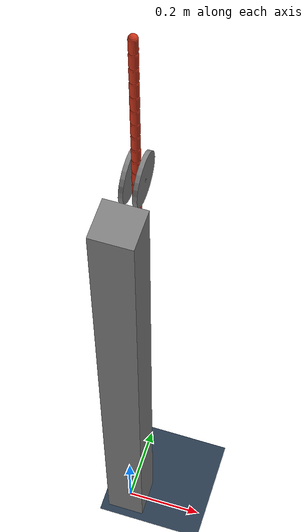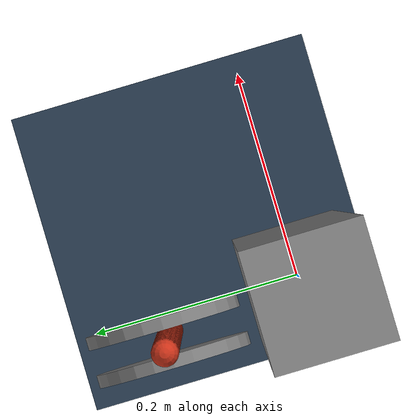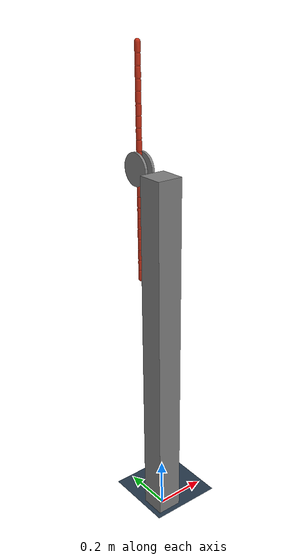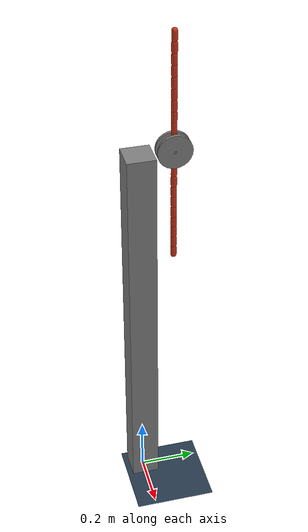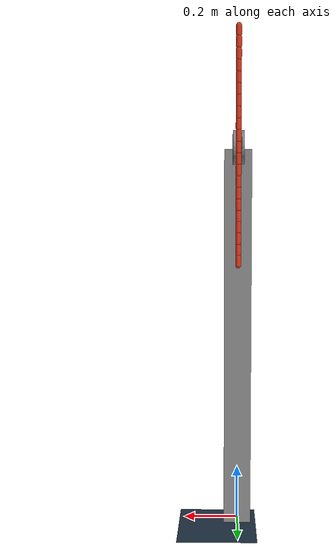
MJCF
<mujoco model="d2w_cables">
    <compiler angle="radian" meshdir="asset/" texturedir="asset/" />
    <option timestep="0.001" jacobian="dense">
        <flag sensornoise="enable" />
    </option>
    <size njmax="10000" nconmax="300" nstack="500000" />
    <visual>
        <global offwidth="800" offheight="800" />
        <quality shadowsize="4096" />
        <map stiffness="700" force="0.1" fogstart="10" fogend="15" zfar="30" shadowscale="0.5" />
        <rgba haze="0.15 0.25 0.4 1" />
    </visual>
    <statistic meansize="0.05" extent="1.5" />
    <default class="main">
        <general ctrllimited="true" ctrlrange="-1 1" />
        <default class="body">
            <joint limited="true" solimplimit="0 0.99 0.01 0.5 2" stiffness="1" armature="0.01" damping="0.2" />
            <geom type="capsule" condim="1" friction="0.7 0.005 0.0001" solref="0.015 1" solimp="0.9 0.99 0.003 0.5 2" material="body" />
            <default class="big_joint">
                <joint stiffness="10" damping="5" />
                <default class="big_stiff_joint">
                    <joint stiffness="20" />
                </default>
            </default>
        </default>
    </default>
    <asset>
        <texture type="skybox" builtin="gradient" rgb1="0.3 0.5 0.7" rgb2="0 0 0" width="512" height="3072" />
        <texture type="2d" name="texplane" builtin="checker" mark="cross" rgb1="0.2 0.3 0.4" rgb2="0.1 0.15 0.2" markrgb="0.8 0.8 0.8" width="512" height="512" />
        <texture type="2d" name="texcarpet" file="carpet.png" />
        <texture type="2d" name="texsponge" file="sponge.png" />
        <texture type="cube" name="texmarble" file="marble.png" />
        <texture type="skybox" builtin="gradient" rgb1="0.3 0.5 0.7" rgb2="0 0 0" width="512" height="3072" />
        <texture type="cube" name="body" builtin="flat" mark="cross" rgb1="0.8 0.6 0.4" rgb2="0.8 0.6 0.4" markrgb="1 1 1" width="127" height="762" />
        <texture type="2d" name="grid" builtin="checker" rgb1="0.1 0.2 0.3" rgb2="0.2 0.3 0.4" width="512" height="512" />
        <material name="matplane" texture="texplane" texuniform="true" reflectance="0.3" />
        <material name="matcarpet" texture="texcarpet" />
        <material name="matsponge" texture="texsponge" specular="0.3" />
        <material name="matmarble" texture="texmarble" rgba="0.7 0.7 0.7 1" />
        <material name="body" texture="body" texuniform="true" rgba="0.8 0.6 0.4 1" />
        <material name="grid" texture="grid" texuniform="true" reflectance="0.2" />
    </asset>
    <worldbody>
        <geom name="ground" size="0 0 1" type="plane" condim="1" material="matplane" />
        <light pos="0 0 5" dir="0 0 -1" directional="true" castshadow="false" diffuse="0.4 0.4 0.4" specular="0.1 0.1 0.1" />
        <light pos="0 0 4" dir="0 0 -1" directional="true" diffuse="0.6 0.6 0.6" specular="0.2 0.2 0.2" />
        <body name="mastil_0" pos="0 0 0.7" quat="0.707107 0 0.707107 0">
            <inertial pos="0 0 0" mass="1000" diaginertia="1.66667 164.167 164.167" />
            <geom size="0.7 0.05 0.05" type="box" />
            <body name="b_winch_0" pos="-0.7 0.12 0">
                <inertial pos="0 0 5.15464e-05" quat="0.5 0.5 -0.5 0.5" mass="0.228551" diaginertia="0.00040718 0.000256604 0.000256604" />
                <joint name="winch_0" pos="0 0 0" axis="0 0 1" range="-1.5708 1.5708" />
                <geom size="0.005 0.015" pos="0 0 0.005" quat="0 1 0 0" type="cylinder" condim="6" priority="2" solimp="0.9 0.99 0.003 0.5 2" />
                <geom size="0.06 0.005" pos="0 0 -0.015" type="cylinder" condim="6" priority="2" />
                <geom size="0.06 0.005" pos="0 0 0.015" quat="0 1 0 0" type="cylinder" condim="6" priority="2" />
                <body name="B10" pos="0 0 0">
                    <inertial pos="0 0 0" quat="0.707107 0 0.707107 0" mass="0.0125664" diaginertia="1.98968e-06 1.98968e-06 6.28319e-07" />
                    <geom name="G10" size="0.01 0.015" quat="0.707107 0 0.707107 0" type="capsule" rgba="0.8 0.2 0.1 1" />
                    <body name="B11" pos="0.04 0 0">
                        <inertial pos="0 0 0" quat="0.707107 0 0.707107 0" mass="0.0125664" diaginertia="1.98968e-06 1.98968e-06 6.28319e-07" />
                        <joint name="J0_11" pos="-0.02 0 0" axis="0 1 0" group="3" damping="0.005" />
                        <joint name="J1_11" pos="-0.02 0 0" axis="0 0 1" group="3" damping="0.005" />
                        <geom name="G11" size="0.01 0.015" quat="0.707107 0 0.707107 0" type="capsule" rgba="0.8 0.2 0.1 1" />
                        <body name="B12" pos="0.04 0 0">
                            <inertial pos="0 0 0" quat="0.707107 0 0.707107 0" mass="0.0125664" diaginertia="1.98968e-06 1.98968e-06 6.28319e-07" />
                            <joint name="J0_12" pos="-0.02 0 0" axis="0 1 0" group="3" damping="0.005" />
                            <joint name="J1_12" pos="-0.02 0 0" axis="0 0 1" group="3" damping="0.005" />
                            <geom name="G12" size="0.01 0.015" quat="0.707107 0 0.707107 0" type="capsule" rgba="0.8 0.2 0.1 1" />
                            <body name="B13" pos="0.04 0 0">
                                <inertial pos="0 0 0" quat="0.707107 0 0.707107 0" mass="0.0125664" diaginertia="1.98968e-06 1.98968e-06 6.28319e-07" />
                                <joint name="J0_13" pos="-0.02 0 0" axis="0 1 0" group="3" damping="0.005" />
                                <joint name="J1_13" pos="-0.02 0 0" axis="0 0 1" group="3" damping="0.005" />
                                <geom name="G13" size="0.01 0.015" quat="0.707107 0 0.707107 0" type="capsule" rgba="0.8 0.2 0.1 1" />
                                <body name="B14" pos="0.04 0 0">
                                    <inertial pos="0 0 0" quat="0.707107 0 0.707107 0" mass="0.0125664" diaginertia="1.98968e-06 1.98968e-06 6.28319e-07" />
                                    <joint name="J0_14" pos="-0.02 0 0" axis="0 1 0" group="3" damping="0.005" />
                                    <joint name="J1_14" pos="-0.02 0 0" axis="0 0 1" group="3" damping="0.005" />
                                    <geom name="G14" size="0.01 0.015" quat="0.707107 0 0.707107 0" type="capsule" rgba="0.8 0.2 0.1 1" />
                                    <body name="B15" pos="0.04 0 0">
                                        <inertial pos="0 0 0" quat="0.707107 0 0.707107 0" mass="0.0125664" diaginertia="1.98968e-06 1.98968e-06 6.28319e-07" />
                                        <joint name="J0_15" pos="-0.02 0 0" axis="0 1 0" group="3" damping="0.005" />
                                        <joint name="J1_15" pos="-0.02 0 0" axis="0 0 1" group="3" damping="0.005" />
                                        <geom name="G15" size="0.01 0.015" quat="0.707107 0 0.707107 0" type="capsule" rgba="0.8 0.2 0.1 1" />
                                        <body name="B16" pos="0.04 0 0">
                                            <inertial pos="0 0 0" quat="0.707107 0 0.707107 0" mass="0.0125664" diaginertia="1.98968e-06 1.98968e-06 6.28319e-07" />
                                            <joint name="J0_16" pos="-0.02 0 0" axis="0 1 0" group="3" damping="0.005" />
                                            <joint name="J1_16" pos="-0.02 0 0" axis="0 0 1" group="3" damping="0.005" />
                                            <geom name="G16" size="0.01 0.015" quat="0.707107 0 0.707107 0" type="capsule" rgba="0.8 0.2 0.1 1" />
                                            <body name="B17" pos="0.04 0 0">
                                                <inertial pos="0 0 0" quat="0.707107 0 0.707107 0" mass="0.0125664" diaginertia="1.98968e-06 1.98968e-06 6.28319e-07" />
                                                <joint name="J0_17" pos="-0.02 0 0" axis="0 1 0" group="3" damping="0.005" />
                                                <joint name="J1_17" pos="-0.02 0 0" axis="0 0 1" group="3" damping="0.005" />
                                                <geom name="G17" size="0.01 0.015" quat="0.707107 0 0.707107 0" type="capsule" rgba="0.8 0.2 0.1 1" />
                                                <body name="B18" pos="0.04 0 0">
                                                    <inertial pos="0 0 0" quat="0.707107 0 0.707107 0" mass="0.0125664" diaginertia="1.98968e-06 1.98968e-06 6.28319e-07" />
                                                    <joint name="J0_18" pos="-0.02 0 0" axis="0 1 0" group="3" damping="0.005" />
                                                    <joint name="J1_18" pos="-0.02 0 0" axis="0 0 1" group="3" damping="0.005" />
                                                    <geom name="G18" size="0.01 0.015" quat="0.707107 0 0.707107 0" type="capsule" rgba="0.8 0.2 0.1 1" />
                                                    <body name="B19" pos="0.04 0 0">
                                                        <inertial pos="0 0 0" quat="0.707107 0 0.707107 0" mass="0.0125664" diaginertia="1.98968e-06 1.98968e-06 6.28319e-07" />
                                                        <joint name="J0_19" pos="-0.02 0 0" axis="0 1 0" group="3" damping="0.005" />
                                                        <joint name="J1_19" pos="-0.02 0 0" axis="0 0 1" group="3" damping="0.005" />
                                                        <geom name="G19" size="0.01 0.015" quat="0.707107 0 0.707107 0" type="capsule" rgba="0.8 0.2 0.1 1" />
                                                        <body name="B20" pos="0.04 0 0">
                                                            <inertial pos="0 0 0" quat="0.707107 0 0.707107 0" mass="0.0125664" diaginertia="1.98968e-06 1.98968e-06 6.28319e-07" />
                                                            <joint name="J0_20" pos="-0.02 0 0" axis="0 1 0" group="3" damping="0.005" />
                                                            <joint name="J1_20" pos="-0.02 0 0" axis="0 0 1" group="3" damping="0.005" />
                                                            <geom name="G20" size="0.01 0.015" quat="0.707107 0 0.707107 0" type="capsule" rgba="0.8 0.2 0.1 1" />
                                                        </body>
                                                    </body>
                                                </body>
                                            </body>
                                        </body>
                                    </body>
                                </body>
                            </body>
                        </body>
                    </body>
                    <body name="B9" pos="-0.04 0 0">
                        <inertial pos="0 0 0" quat="0.707107 0 0.707107 0" mass="0.0125664" diaginertia="1.98968e-06 1.98968e-06 6.28319e-07" />
                        <joint name="J0_9" pos="0.02 0 0" axis="0 1 0" group="3" damping="0.005" />
                        <joint name="J1_9" pos="0.02 0 0" axis="0 0 1" group="3" damping="0.005" />
                        <geom name="G9" size="0.01 0.015" quat="0.707107 0 0.707107 0" type="capsule" rgba="0.8 0.2 0.1 1" />
                        <body name="B8" pos="-0.04 0 0">
                            <inertial pos="0 0 0" quat="0.707107 0 0.707107 0" mass="0.0125664" diaginertia="1.98968e-06 1.98968e-06 6.28319e-07" />
                            <joint name="J0_8" pos="0.02 0 0" axis="0 1 0" group="3" damping="0.005" />
                            <joint name="J1_8" pos="0.02 0 0" axis="0 0 1" group="3" damping="0.005" />
                            <geom name="G8" size="0.01 0.015" quat="0.707107 0 0.707107 0" type="capsule" rgba="0.8 0.2 0.1 1" />
                            <body name="B7" pos="-0.04 0 0">
                                <inertial pos="0 0 0" quat="0.707107 0 0.707107 0" mass="0.0125664" diaginertia="1.98968e-06 1.98968e-06 6.28319e-07" />
                                <joint name="J0_7" pos="0.02 0 0" axis="0 1 0" group="3" damping="0.005" />
                                <joint name="J1_7" pos="0.02 0 0" axis="0 0 1" group="3" damping="0.005" />
                                <geom name="G7" size="0.01 0.015" quat="0.707107 0 0.707107 0" type="capsule" rgba="0.8 0.2 0.1 1" />
                                <body name="B6" pos="-0.04 0 0">
                                    <inertial pos="0 0 0" quat="0.707107 0 0.707107 0" mass="0.0125664" diaginertia="1.98968e-06 1.98968e-06 6.28319e-07" />
                                    <joint name="J0_6" pos="0.02 0 0" axis="0 1 0" group="3" damping="0.005" />
                                    <joint name="J1_6" pos="0.02 0 0" axis="0 0 1" group="3" damping="0.005" />
                                    <geom name="G6" size="0.01 0.015" quat="0.707107 0 0.707107 0" type="capsule" rgba="0.8 0.2 0.1 1" />
                                    <body name="B5" pos="-0.04 0 0">
                                        <inertial pos="0 0 0" quat="0.707107 0 0.707107 0" mass="0.0125664" diaginertia="1.98968e-06 1.98968e-06 6.28319e-07" />
                                        <joint name="J0_5" pos="0.02 0 0" axis="0 1 0" group="3" damping="0.005" />
                                        <joint name="J1_5" pos="0.02 0 0" axis="0 0 1" group="3" damping="0.005" />
                                        <geom name="G5" size="0.01 0.015" quat="0.707107 0 0.707107 0" type="capsule" rgba="0.8 0.2 0.1 1" />
                                        <body name="B4" pos="-0.04 0 0">
                                            <inertial pos="0 0 0" quat="0.707107 0 0.707107 0" mass="0.0125664" diaginertia="1.98968e-06 1.98968e-06 6.28319e-07" />
                                            <joint name="J0_4" pos="0.02 0 0" axis="0 1 0" group="3" damping="0.005" />
                                            <joint name="J1_4" pos="0.02 0 0" axis="0 0 1" group="3" damping="0.005" />
                                            <geom name="G4" size="0.01 0.015" quat="0.707107 0 0.707107 0" type="capsule" rgba="0.8 0.2 0.1 1" />
                                            <body name="B3" pos="-0.04 0 0">
                                                <inertial pos="0 0 0" quat="0.707107 0 0.707107 0" mass="0.0125664" diaginertia="1.98968e-06 1.98968e-06 6.28319e-07" />
                                                <joint name="J0_3" pos="0.02 0 0" axis="0 1 0" group="3" damping="0.005" />
                                                <joint name="J1_3" pos="0.02 0 0" axis="0 0 1" group="3" damping="0.005" />
                                                <geom name="G3" size="0.01 0.015" quat="0.707107 0 0.707107 0" type="capsule" rgba="0.8 0.2 0.1 1" />
                                                <body name="B2" pos="-0.04 0 0">
                                                    <inertial pos="0 0 0" quat="0.707107 0 0.707107 0" mass="0.0125664" diaginertia="1.98968e-06 1.98968e-06 6.28319e-07" />
                                                    <joint name="J0_2" pos="0.02 0 0" axis="0 1 0" group="3" damping="0.005" />
                                                    <joint name="J1_2" pos="0.02 0 0" axis="0 0 1" group="3" damping="0.005" />
                                                    <geom name="G2" size="0.01 0.015" quat="0.707107 0 0.707107 0" type="capsule" rgba="0.8 0.2 0.1 1" />
                                                    <body name="B1" pos="-0.04 0 0">
                                                        <inertial pos="0 0 0" quat="0.707107 0 0.707107 0" mass="0.0125664" diaginertia="1.98968e-06 1.98968e-06 6.28319e-07" />
                                                        <joint name="J0_1" pos="0.02 0 0" axis="0 1 0" group="3" damping="0.005" />
                                                        <joint name="J1_1" pos="0.02 0 0" axis="0 0 1" group="3" damping="0.005" />
                                                        <geom name="G1" size="0.01 0.015" quat="0.707107 0 0.707107 0" type="capsule" rgba="0.8 0.2 0.1 1" />
                                                        <body name="B0" pos="-0.04 0 0">
                                                            <inertial pos="0 0 0" quat="0.707107 0 0.707107 0" mass="0.0125664" diaginertia="1.98968e-06 1.98968e-06 6.28319e-07" />
                                                            <joint name="J0_0" pos="0.02 0 0" axis="0 1 0" group="3" damping="0.005" />
                                                            <joint name="J1_0" pos="0.02 0 0" axis="0 0 1" group="3" damping="0.005" />
                                                            <geom name="G0" size="0.01 0.015" quat="0.707107 0 0.707107 0" type="capsule" rgba="0.8 0.2 0.1 1" />
                                                        </body>
                                                    </body>
                                                </body>
                                            </body>
                                        </body>
                                    </body>
                                </body>
                            </body>
                        </body>
                    </body>
                </body>
            </body>
        </body>
    </worldbody>
    <equality>
        <weld body1="mastil_0" body2="world" relpose="0.7 0 0 0.707107 0 -0.707107 0" />
        <weld body1="b_winch_0" body2="world" relpose="1.4 -0.12 0 0.707107 0 -0.707107 0" />
    </equality>
    <actuator>
        <general name="winch_0" joint="winch_0" ctrlrange="-190 190" gear="75 0 0 0 0 0" />
        <general name="winch_0_position" joint="winch_0" ctrlrange="0 400" biastype="affine" gainprm="100 0 0 0 0 0 0 0 0 0" biasprm="0 -100 0 0 0 0 0 0 0 0" />
        <general name="winch_0_velocity" joint="winch_0" biastype="affine" gainprm="0 0 0 0 0 0 0 0 0 0" />
    </actuator>
    <sensor>
        <jointpos joint="winch_0" />
        <jointvel joint="winch_0" />
    </sensor>
</mujoco>
